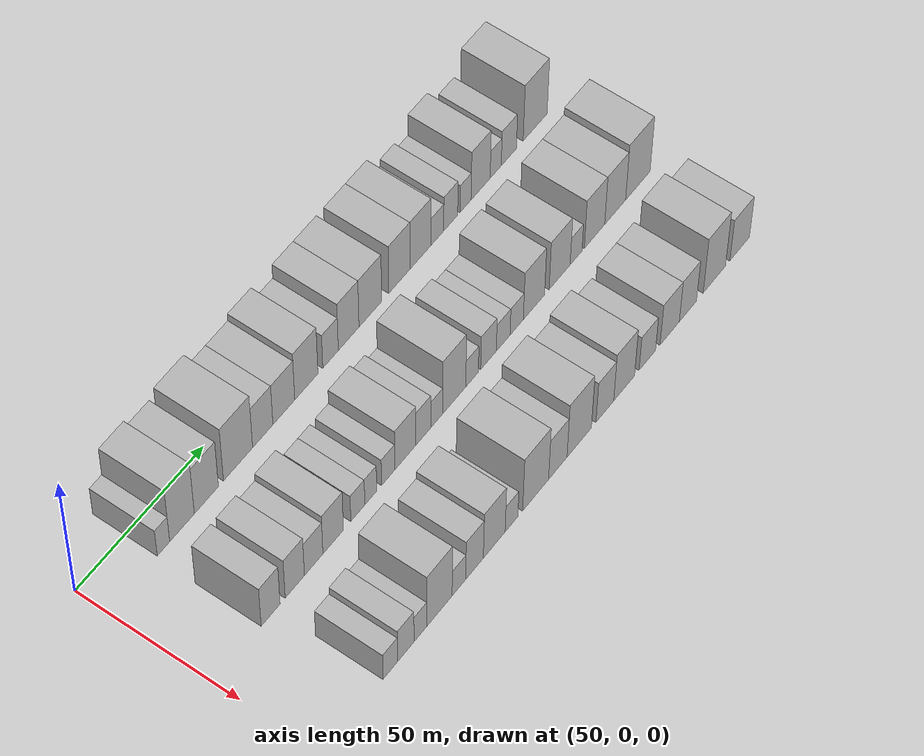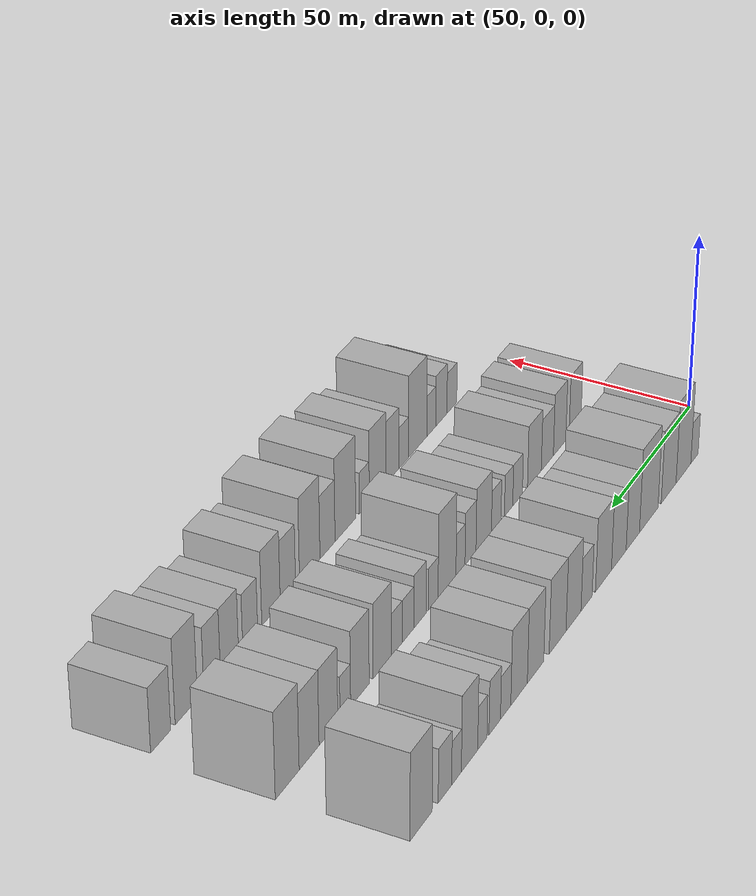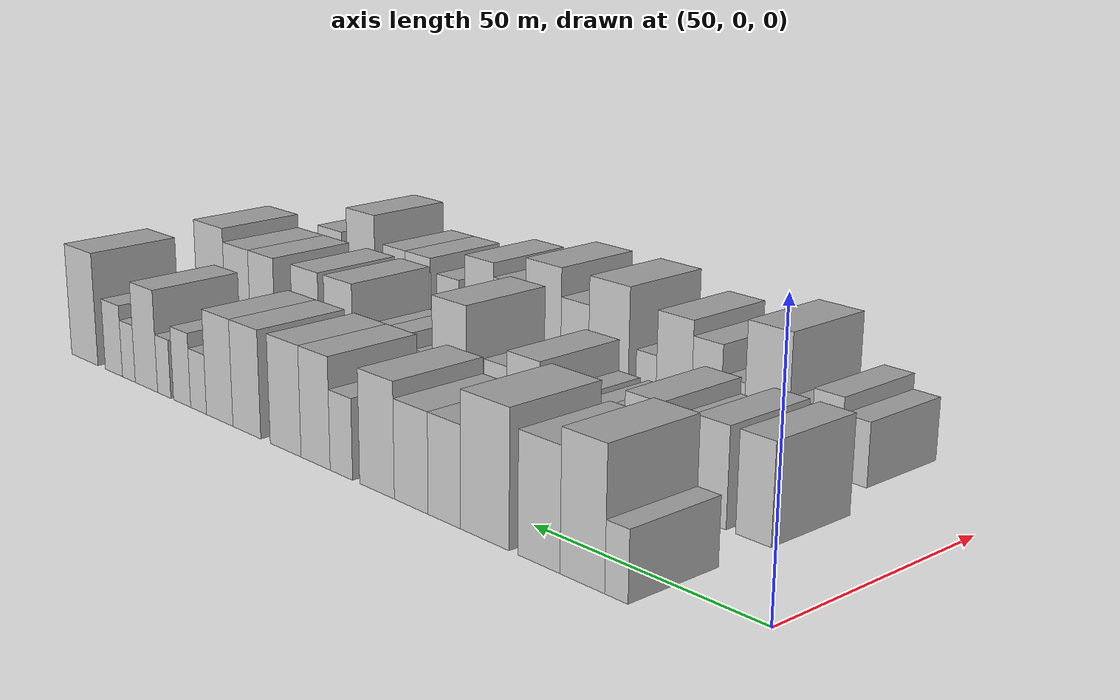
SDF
<sdf version="1.6">
 <world name="default">
  <model name="building_40">
   <static>1</static>
   <pose>50.0000 21.5053 0 0.000000 0.000000 0.000000</pose>
   <link name="link">
    <pose>0 0 6.00 0 0 0</pose>
    <collision name="collision"><geometry><box><size>20.0000 4.8674 12.0000</size></box></geometry></collision>
    <visual name="visual">
     <cast_shadows>0</cast_shadows>
     <geometry><box><size>20.0000 4.8674 12.0000</size></box></geometry>
     <material>
      <script>
       <uri>model://HANNAS_wall/materials/scripts</uri>
       <uri>model://HANNAS_wall/materials/textures</uri>
       <name>vrc/HANNAS_wall</name>
      </script>
     </material>
    </visual>
   </link>
  </model>
  <model name="building_41">
   <static>1</static>
   <pose>50.0000 28.7867 0 0.000000 0.000000 0.000000</pose>
   <link name="link">
    <pose>0 0 12.00 0 0 0</pose>
    <collision name="collision"><geometry><box><size>20.0000 9.6955 24.0000</size></box></geometry></collision>
    <visual name="visual">
     <cast_shadows>0</cast_shadows>
     <geometry><box><size>20.0000 9.6955 24.0000</size></box></geometry>
     <material>
      <script>
       <uri>model://HANNAS_wall/materials/scripts</uri>
       <uri>model://HANNAS_wall/materials/textures</uri>
       <name>vrc/HANNAS_wall</name>
      </script>
     </material>
    </visual>
   </link>
  </model>
  <model name="building_42">
   <static>1</static>
   <pose>50.0000 38.4106 0 0.000000 0.000000 0.000000</pose>
   <link name="link">
    <pose>0 0 10.50 0 0 0</pose>
    <collision name="collision"><geometry><box><size>20.0000 9.5522 21.0000</size></box></geometry></collision>
    <visual name="visual">
     <cast_shadows>0</cast_shadows>
     <geometry><box><size>20.0000 9.5522 21.0000</size></box></geometry>
     <material>
      <script>
       <uri>model://HANNAS_wall/materials/scripts</uri>
       <uri>model://HANNAS_wall/materials/textures</uri>
       <name>vrc/HANNAS_wall</name>
      </script>
     </material>
    </visual>
   </link>
  </model>
  <model name="building_43">
   <static>1</static>
   <pose>50.0000 51.0398 0 0.000000 0.000000 0.000000</pose>
   <link name="link">
    <pose>0 0 12.00 0 0 0</pose>
    <collision name="collision"><geometry><box><size>20.0000 11.7063 24.0000</size></box></geometry></collision>
    <visual name="visual">
     <cast_shadows>0</cast_shadows>
     <geometry><box><size>20.0000 11.7063 24.0000</size></box></geometry>
     <material>
      <script>
       <uri>model://HANNAS_wall/materials/scripts</uri>
       <uri>model://HANNAS_wall/materials/textures</uri>
       <name>vrc/HANNAS_wall</name>
      </script>
     </material>
    </visual>
   </link>
  </model>
  <model name="building_44">
   <static>1</static>
   <pose>50.0000 61.0070 0 0.000000 0.000000 0.000000</pose>
   <link name="link">
    <pose>0 0 9.00 0 0 0</pose>
    <collision name="collision"><geometry><box><size>20.0000 8.2280 18.0000</size></box></geometry></collision>
    <visual name="visual">
     <cast_shadows>0</cast_shadows>
     <geometry><box><size>20.0000 8.2280 18.0000</size></box></geometry>
     <material>
      <script>
       <uri>model://HANNAS_wall/materials/scripts</uri>
       <uri>model://HANNAS_wall/materials/textures</uri>
       <name>vrc/HANNAS_wall</name>
      </script>
     </material>
    </visual>
   </link>
  </model>
  <model name="building_45">
   <static>1</static>
   <pose>50.0000 69.5817 0 0.000000 0.000000 0.000000</pose>
   <link name="link">
    <pose>0 0 9.00 0 0 0</pose>
    <collision name="collision"><geometry><box><size>20.0000 8.9216 18.0000</size></box></geometry></collision>
    <visual name="visual">
     <cast_shadows>0</cast_shadows>
     <geometry><box><size>20.0000 8.9216 18.0000</size></box></geometry>
     <material>
      <script>
       <uri>model://HANNAS_wall/materials/scripts</uri>
       <uri>model://HANNAS_wall/materials/textures</uri>
       <name>vrc/HANNAS_wall</name>
      </script>
     </material>
    </visual>
   </link>
  </model>
  <model name="building_46">
   <static>1</static>
   <pose>50.0000 78.8155 0 0.000000 0.000000 0.000000</pose>
   <link name="link">
    <pose>0 0 10.50 0 0 0</pose>
    <collision name="collision"><geometry><box><size>20.0000 9.5459 21.0000</size></box></geometry></collision>
    <visual name="visual">
     <cast_shadows>0</cast_shadows>
     <geometry><box><size>20.0000 9.5459 21.0000</size></box></geometry>
     <material>
      <script>
       <uri>model://HANNAS_wall/materials/scripts</uri>
       <uri>model://HANNAS_wall/materials/textures</uri>
       <name>vrc/HANNAS_wall</name>
      </script>
     </material>
    </visual>
   </link>
  </model>
  <model name="building_47">
   <static>1</static>
   <pose>50.0000 88.8170 0 0.000000 0.000000 0.000000</pose>
   <link name="link">
    <pose>0 0 7.50 0 0 0</pose>
    <collision name="collision"><geometry><box><size>20.0000 6.4572 15.0000</size></box></geometry></collision>
    <visual name="visual">
     <cast_shadows>0</cast_shadows>
     <geometry><box><size>20.0000 6.4572 15.0000</size></box></geometry>
     <material>
      <script>
       <uri>model://HANNAS_wall/materials/scripts</uri>
       <uri>model://HANNAS_wall/materials/textures</uri>
       <name>vrc/HANNAS_wall</name>
      </script>
     </material>
    </visual>
   </link>
  </model>
  <model name="building_48">
   <static>1</static>
   <pose>50.0000 96.3741 0 0.000000 0.000000 0.000000</pose>
   <link name="link">
    <pose>0 0 10.50 0 0 0</pose>
    <collision name="collision"><geometry><box><size>20.0000 8.6570 21.0000</size></box></geometry></collision>
    <visual name="visual">
     <cast_shadows>0</cast_shadows>
     <geometry><box><size>20.0000 8.6570 21.0000</size></box></geometry>
     <material>
      <script>
       <uri>model://HANNAS_wall/materials/scripts</uri>
       <uri>model://HANNAS_wall/materials/textures</uri>
       <name>vrc/HANNAS_wall</name>
      </script>
     </material>
    </visual>
   </link>
  </model>
  <model name="building_49">
   <static>1</static>
   <pose>50.0000 105.4882 0 0.000000 0.000000 0.000000</pose>
   <link name="link">
    <pose>0 0 10.50 0 0 0</pose>
    <collision name="collision"><geometry><box><size>20.0000 9.5713 21.0000</size></box></geometry></collision>
    <visual name="visual">
     <cast_shadows>0</cast_shadows>
     <geometry><box><size>20.0000 9.5713 21.0000</size></box></geometry>
     <material>
      <script>
       <uri>model://HANNAS_wall/materials/scripts</uri>
       <uri>model://HANNAS_wall/materials/textures</uri>
       <name>vrc/HANNAS_wall</name>
      </script>
     </material>
    </visual>
   </link>
  </model>
  <model name="building_50">
   <static>1</static>
   <pose>50.0000 117.8128 0 0.000000 0.000000 0.000000</pose>
   <link name="link">
    <pose>0 0 10.50 0 0 0</pose>
    <collision name="collision"><geometry><box><size>20.0000 9.0778 21.0000</size></box></geometry></collision>
    <visual name="visual">
     <cast_shadows>0</cast_shadows>
     <geometry><box><size>20.0000 9.0778 21.0000</size></box></geometry>
     <material>
      <script>
       <uri>model://HANNAS_wall/materials/scripts</uri>
       <uri>model://HANNAS_wall/materials/textures</uri>
       <name>vrc/HANNAS_wall</name>
      </script>
     </material>
    </visual>
   </link>
  </model>
  <model name="building_51">
   <static>1</static>
   <pose>50.0000 126.8346 0 0.000000 0.000000 0.000000</pose>
   <link name="link">
    <pose>0 0 10.50 0 0 0</pose>
    <collision name="collision"><geometry><box><size>20.0000 8.9659 21.0000</size></box></geometry></collision>
    <visual name="visual">
     <cast_shadows>0</cast_shadows>
     <geometry><box><size>20.0000 8.9659 21.0000</size></box></geometry>
     <material>
      <script>
       <uri>model://HANNAS_wall/materials/scripts</uri>
       <uri>model://HANNAS_wall/materials/textures</uri>
       <name>vrc/HANNAS_wall</name>
      </script>
     </material>
    </visual>
   </link>
  </model>
  <model name="building_52">
   <static>1</static>
   <pose>50.0000 134.0866 0 0.000000 0.000000 0.000000</pose>
   <link name="link">
    <pose>0 0 6.00 0 0 0</pose>
    <collision name="collision"><geometry><box><size>20.0000 5.5380 12.0000</size></box></geometry></collision>
    <visual name="visual">
     <cast_shadows>0</cast_shadows>
     <geometry><box><size>20.0000 5.5380 12.0000</size></box></geometry>
     <material>
      <script>
       <uri>model://HANNAS_wall/materials/scripts</uri>
       <uri>model://HANNAS_wall/materials/textures</uri>
       <name>vrc/HANNAS_wall</name>
      </script>
     </material>
    </visual>
   </link>
  </model>
  <model name="building_53">
   <static>1</static>
   <pose>50.0000 139.9092 0 0.000000 0.000000 0.000000</pose>
   <link name="link">
    <pose>0 0 7.50 0 0 0</pose>
    <collision name="collision"><geometry><box><size>20.0000 6.1073 15.0000</size></box></geometry></collision>
    <visual name="visual">
     <cast_shadows>0</cast_shadows>
     <geometry><box><size>20.0000 6.1073 15.0000</size></box></geometry>
     <material>
      <script>
       <uri>model://HANNAS_wall/materials/scripts</uri>
       <uri>model://HANNAS_wall/materials/textures</uri>
       <name>vrc/HANNAS_wall</name>
      </script>
     </material>
    </visual>
   </link>
  </model>
  <model name="building_54">
   <static>1</static>
   <pose>50.0000 146.3804 0 0.000000 0.000000 0.000000</pose>
   <link name="link">
    <pose>0 0 6.00 0 0 0</pose>
    <collision name="collision"><geometry><box><size>20.0000 4.8351 12.0000</size></box></geometry></collision>
    <visual name="visual">
     <cast_shadows>0</cast_shadows>
     <geometry><box><size>20.0000 4.8351 12.0000</size></box></geometry>
     <material>
      <script>
       <uri>model://HANNAS_wall/materials/scripts</uri>
       <uri>model://HANNAS_wall/materials/textures</uri>
       <name>vrc/HANNAS_wall</name>
      </script>
     </material>
    </visual>
   </link>
  </model>
  <model name="building_55">
   <static>1</static>
   <pose>50.0000 153.0056 0 0.000000 0.000000 0.000000</pose>
   <link name="link">
    <pose>0 0 10.50 0 0 0</pose>
    <collision name="collision"><geometry><box><size>20.0000 8.4152 21.0000</size></box></geometry></collision>
    <visual name="visual">
     <cast_shadows>0</cast_shadows>
     <geometry><box><size>20.0000 8.4152 21.0000</size></box></geometry>
     <material>
      <script>
       <uri>model://HANNAS_wall/materials/scripts</uri>
       <uri>model://HANNAS_wall/materials/textures</uri>
       <name>vrc/HANNAS_wall</name>
      </script>
     </material>
    </visual>
   </link>
  </model>
  <model name="building_56">
   <static>1</static>
   <pose>50.0000 159.6802 0 0.000000 0.000000 0.000000</pose>
   <link name="link">
    <pose>0 0 6.00 0 0 0</pose>
    <collision name="collision"><geometry><box><size>20.0000 4.9340 12.0000</size></box></geometry></collision>
    <visual name="visual">
     <cast_shadows>0</cast_shadows>
     <geometry><box><size>20.0000 4.9340 12.0000</size></box></geometry>
     <material>
      <script>
       <uri>model://HANNAS_wall/materials/scripts</uri>
       <uri>model://HANNAS_wall/materials/textures</uri>
       <name>vrc/HANNAS_wall</name>
      </script>
     </material>
    </visual>
   </link>
  </model>
  <model name="building_57">
   <static>1</static>
   <pose>50.0000 165.5233 0 0.000000 0.000000 0.000000</pose>
   <link name="link">
    <pose>0 0 7.50 0 0 0</pose>
    <collision name="collision"><geometry><box><size>20.0000 6.7521 15.0000</size></box></geometry></collision>
    <visual name="visual">
     <cast_shadows>0</cast_shadows>
     <geometry><box><size>20.0000 6.7521 15.0000</size></box></geometry>
     <material>
      <script>
       <uri>model://HANNAS_wall/materials/scripts</uri>
       <uri>model://HANNAS_wall/materials/textures</uri>
       <name>vrc/HANNAS_wall</name>
      </script>
     </material>
    </visual>
   </link>
  </model>
  <model name="building_58">
   <static>1</static>
   <pose>50.0000 177.2919 0 0.000000 0.000000 0.000000</pose>
   <link name="link">
    <pose>0 0 12.00 0 0 0</pose>
    <collision name="collision"><geometry><box><size>20.0000 10.7852 24.0000</size></box></geometry></collision>
    <visual name="visual">
     <cast_shadows>0</cast_shadows>
     <geometry><box><size>20.0000 10.7852 24.0000</size></box></geometry>
     <material>
      <script>
       <uri>model://HANNAS_wall/materials/scripts</uri>
       <uri>model://HANNAS_wall/materials/textures</uri>
       <name>vrc/HANNAS_wall</name>
      </script>
     </material>
    </visual>
   </link>
  </model>
  <model name="building_113">
   <static>1</static>
   <pose>82.0000 22.3080 0 0.000000 0.000000 0.000000</pose>
   <link name="link">
    <pose>0 0 9.00 0 0 0</pose>
    <collision name="collision"><geometry><box><size>20.0000 7.4713 18.0000</size></box></geometry></collision>
    <visual name="visual">
     <cast_shadows>0</cast_shadows>
     <geometry><box><size>20.0000 7.4713 18.0000</size></box></geometry>
     <material>
      <script>
       <uri>model://HANNAS_wall/materials/scripts</uri>
       <uri>model://HANNAS_wall/materials/textures</uri>
       <name>vrc/HANNAS_wall</name>
      </script>
     </material>
    </visual>
   </link>
  </model>
  <model name="building_114">
   <static>1</static>
   <pose>82.0000 31.8776 0 0.000000 0.000000 0.000000</pose>
   <link name="link">
    <pose>0 0 9.00 0 0 0</pose>
    <collision name="collision"><geometry><box><size>20.0000 7.6680 18.0000</size></box></geometry></collision>
    <visual name="visual">
     <cast_shadows>0</cast_shadows>
     <geometry><box><size>20.0000 7.6680 18.0000</size></box></geometry>
     <material>
      <script>
       <uri>model://HANNAS_wall/materials/scripts</uri>
       <uri>model://HANNAS_wall/materials/textures</uri>
       <name>vrc/HANNAS_wall</name>
      </script>
     </material>
    </visual>
   </link>
  </model>
  <model name="building_115">
   <static>1</static>
   <pose>82.0000 39.4012 0 0.000000 0.000000 0.000000</pose>
   <link name="link">
    <pose>0 0 7.50 0 0 0</pose>
    <collision name="collision"><geometry><box><size>20.0000 7.3793 15.0000</size></box></geometry></collision>
    <visual name="visual">
     <cast_shadows>0</cast_shadows>
     <geometry><box><size>20.0000 7.3793 15.0000</size></box></geometry>
     <material>
      <script>
       <uri>model://HANNAS_wall/materials/scripts</uri>
       <uri>model://HANNAS_wall/materials/textures</uri>
       <name>vrc/HANNAS_wall</name>
      </script>
     </material>
    </visual>
   </link>
  </model>
  <model name="building_116">
   <static>1</static>
   <pose>82.0000 47.2325 0 0.000000 0.000000 0.000000</pose>
   <link name="link">
    <pose>0 0 9.00 0 0 0</pose>
    <collision name="collision"><geometry><box><size>20.0000 8.2833 18.0000</size></box></geometry></collision>
    <visual name="visual">
     <cast_shadows>0</cast_shadows>
     <geometry><box><size>20.0000 8.2833 18.0000</size></box></geometry>
     <material>
      <script>
       <uri>model://HANNAS_wall/materials/scripts</uri>
       <uri>model://HANNAS_wall/materials/textures</uri>
       <name>vrc/HANNAS_wall</name>
      </script>
     </material>
    </visual>
   </link>
  </model>
  <model name="building_117">
   <static>1</static>
   <pose>82.0000 57.2174 0 0.000000 0.000000 0.000000</pose>
   <link name="link">
    <pose>0 0 6.00 0 0 0</pose>
    <collision name="collision"><geometry><box><size>20.0000 5.6864 12.0000</size></box></geometry></collision>
    <visual name="visual">
     <cast_shadows>0</cast_shadows>
     <geometry><box><size>20.0000 5.6864 12.0000</size></box></geometry>
     <material>
      <script>
       <uri>model://HANNAS_wall/materials/scripts</uri>
       <uri>model://HANNAS_wall/materials/textures</uri>
       <name>vrc/HANNAS_wall</name>
      </script>
     </material>
    </visual>
   </link>
  </model>
  <model name="building_118">
   <static>1</static>
   <pose>82.0000 62.4904 0 0.000000 0.000000 0.000000</pose>
   <link name="link">
    <pose>0 0 6.00 0 0 0</pose>
    <collision name="collision"><geometry><box><size>20.0000 4.8596 12.0000</size></box></geometry></collision>
    <visual name="visual">
     <cast_shadows>0</cast_shadows>
     <geometry><box><size>20.0000 4.8596 12.0000</size></box></geometry>
     <material>
      <script>
       <uri>model://HANNAS_wall/materials/scripts</uri>
       <uri>model://HANNAS_wall/materials/textures</uri>
       <name>vrc/HANNAS_wall</name>
      </script>
     </material>
    </visual>
   </link>
  </model>
  <model name="building_119">
   <static>1</static>
   <pose>82.0000 69.6614 0 0.000000 0.000000 0.000000</pose>
   <link name="link">
    <pose>0 0 6.00 0 0 0</pose>
    <collision name="collision"><geometry><box><size>20.0000 5.4824 12.0000</size></box></geometry></collision>
    <visual name="visual">
     <cast_shadows>0</cast_shadows>
     <geometry><box><size>20.0000 5.4824 12.0000</size></box></geometry>
     <material>
      <script>
       <uri>model://HANNAS_wall/materials/scripts</uri>
       <uri>model://HANNAS_wall/materials/textures</uri>
       <name>vrc/HANNAS_wall</name>
      </script>
     </material>
    </visual>
   </link>
  </model>
  <model name="building_120">
   <static>1</static>
   <pose>82.0000 76.7891 0 0.000000 0.000000 0.000000</pose>
   <link name="link">
    <pose>0 0 9.00 0 0 0</pose>
    <collision name="collision"><geometry><box><size>20.0000 8.7730 18.0000</size></box></geometry></collision>
    <visual name="visual">
     <cast_shadows>0</cast_shadows>
     <geometry><box><size>20.0000 8.7730 18.0000</size></box></geometry>
     <material>
      <script>
       <uri>model://HANNAS_wall/materials/scripts</uri>
       <uri>model://HANNAS_wall/materials/textures</uri>
       <name>vrc/HANNAS_wall</name>
      </script>
     </material>
    </visual>
   </link>
  </model>
  <model name="building_121">
   <static>1</static>
   <pose>82.0000 84.2503 0 0.000000 0.000000 0.000000</pose>
   <link name="link">
    <pose>0 0 7.50 0 0 0</pose>
    <collision name="collision"><geometry><box><size>20.0000 6.1493 15.0000</size></box></geometry></collision>
    <visual name="visual">
     <cast_shadows>0</cast_shadows>
     <geometry><box><size>20.0000 6.1493 15.0000</size></box></geometry>
     <material>
      <script>
       <uri>model://HANNAS_wall/materials/scripts</uri>
       <uri>model://HANNAS_wall/materials/textures</uri>
       <name>vrc/HANNAS_wall</name>
      </script>
     </material>
    </visual>
   </link>
  </model>
  <model name="building_122">
   <static>1</static>
   <pose>82.0000 89.8292 0 0.000000 0.000000 0.000000</pose>
   <link name="link">
    <pose>0 0 6.00 0 0 0</pose>
    <collision name="collision"><geometry><box><size>20.0000 5.0083 12.0000</size></box></geometry></collision>
    <visual name="visual">
     <cast_shadows>0</cast_shadows>
     <geometry><box><size>20.0000 5.0083 12.0000</size></box></geometry>
     <material>
      <script>
       <uri>model://HANNAS_wall/materials/scripts</uri>
       <uri>model://HANNAS_wall/materials/textures</uri>
       <name>vrc/HANNAS_wall</name>
      </script>
     </material>
    </visual>
   </link>
  </model>
  <model name="building_123">
   <static>1</static>
   <pose>82.0000 97.2133 0 0.000000 0.000000 0.000000</pose>
   <link name="link">
    <pose>0 0 12.00 0 0 0</pose>
    <collision name="collision"><geometry><box><size>20.0000 9.7599 24.0000</size></box></geometry></collision>
    <visual name="visual">
     <cast_shadows>0</cast_shadows>
     <geometry><box><size>20.0000 9.7599 24.0000</size></box></geometry>
     <material>
      <script>
       <uri>model://HANNAS_wall/materials/scripts</uri>
       <uri>model://HANNAS_wall/materials/textures</uri>
       <name>vrc/HANNAS_wall</name>
      </script>
     </material>
    </visual>
   </link>
  </model>
  <model name="building_124">
   <static>1</static>
   <pose>82.0000 104.7868 0 0.000000 0.000000 0.000000</pose>
   <link name="link">
    <pose>0 0 6.00 0 0 0</pose>
    <collision name="collision"><geometry><box><size>20.0000 5.3871 12.0000</size></box></geometry></collision>
    <visual name="visual">
     <cast_shadows>0</cast_shadows>
     <geometry><box><size>20.0000 5.3871 12.0000</size></box></geometry>
     <material>
      <script>
       <uri>model://HANNAS_wall/materials/scripts</uri>
       <uri>model://HANNAS_wall/materials/textures</uri>
       <name>vrc/HANNAS_wall</name>
      </script>
     </material>
    </visual>
   </link>
  </model>
  <model name="building_125">
   <static>1</static>
   <pose>82.0000 111.8174 0 0.000000 0.000000 0.000000</pose>
   <link name="link">
    <pose>0 0 7.50 0 0 0</pose>
    <collision name="collision"><geometry><box><size>20.0000 6.6742 15.0000</size></box></geometry></collision>
    <visual name="visual">
     <cast_shadows>0</cast_shadows>
     <geometry><box><size>20.0000 6.6742 15.0000</size></box></geometry>
     <material>
      <script>
       <uri>model://HANNAS_wall/materials/scripts</uri>
       <uri>model://HANNAS_wall/materials/textures</uri>
       <name>vrc/HANNAS_wall</name>
      </script>
     </material>
    </visual>
   </link>
  </model>
  <model name="building_126">
   <static>1</static>
   <pose>82.0000 118.1235 0 0.000000 0.000000 0.000000</pose>
   <link name="link">
    <pose>0 0 6.00 0 0 0</pose>
    <collision name="collision"><geometry><box><size>20.0000 5.9381 12.0000</size></box></geometry></collision>
    <visual name="visual">
     <cast_shadows>0</cast_shadows>
     <geometry><box><size>20.0000 5.9381 12.0000</size></box></geometry>
     <material>
      <script>
       <uri>model://HANNAS_wall/materials/scripts</uri>
       <uri>model://HANNAS_wall/materials/textures</uri>
       <name>vrc/HANNAS_wall</name>
      </script>
     </material>
    </visual>
   </link>
  </model>
  <model name="building_127">
   <static>1</static>
   <pose>82.0000 123.9584 0 0.000000 0.000000 0.000000</pose>
   <link name="link">
    <pose>0 0 6.00 0 0 0</pose>
    <collision name="collision"><geometry><box><size>20.0000 5.7317 12.0000</size></box></geometry></collision>
    <visual name="visual">
     <cast_shadows>0</cast_shadows>
     <geometry><box><size>20.0000 5.7317 12.0000</size></box></geometry>
     <material>
      <script>
       <uri>model://HANNAS_wall/materials/scripts</uri>
       <uri>model://HANNAS_wall/materials/textures</uri>
       <name>vrc/HANNAS_wall</name>
      </script>
     </material>
    </visual>
   </link>
  </model>
  <model name="building_128">
   <static>1</static>
   <pose>82.0000 131.4506 0 0.000000 0.000000 0.000000</pose>
   <link name="link">
    <pose>0 0 10.50 0 0 0</pose>
    <collision name="collision"><geometry><box><size>20.0000 9.2525 21.0000</size></box></geometry></collision>
    <visual name="visual">
     <cast_shadows>0</cast_shadows>
     <geometry><box><size>20.0000 9.2525 21.0000</size></box></geometry>
     <material>
      <script>
       <uri>model://HANNAS_wall/materials/scripts</uri>
       <uri>model://HANNAS_wall/materials/textures</uri>
       <name>vrc/HANNAS_wall</name>
      </script>
     </material>
    </visual>
   </link>
  </model>
  <model name="building_129">
   <static>1</static>
   <pose>82.0000 142.7062 0 0.000000 0.000000 0.000000</pose>
   <link name="link">
    <pose>0 0 10.50 0 0 0</pose>
    <collision name="collision"><geometry><box><size>20.0000 9.2588 21.0000</size></box></geometry></collision>
    <visual name="visual">
     <cast_shadows>0</cast_shadows>
     <geometry><box><size>20.0000 9.2588 21.0000</size></box></geometry>
     <material>
      <script>
       <uri>model://HANNAS_wall/materials/scripts</uri>
       <uri>model://HANNAS_wall/materials/textures</uri>
       <name>vrc/HANNAS_wall</name>
      </script>
     </material>
    </visual>
   </link>
  </model>
  <model name="building_130">
   <static>1</static>
   <pose>82.0000 149.9778 0 0.000000 0.000000 0.000000</pose>
   <link name="link">
    <pose>0 0 6.00 0 0 0</pose>
    <collision name="collision"><geometry><box><size>20.0000 5.2844 12.0000</size></box></geometry></collision>
    <visual name="visual">
     <cast_shadows>0</cast_shadows>
     <geometry><box><size>20.0000 5.2844 12.0000</size></box></geometry>
     <material>
      <script>
       <uri>model://HANNAS_wall/materials/scripts</uri>
       <uri>model://HANNAS_wall/materials/textures</uri>
       <name>vrc/HANNAS_wall</name>
      </script>
     </material>
    </visual>
   </link>
  </model>
  <model name="building_131">
   <static>1</static>
   <pose>82.0000 158.1779 0 0.000000 0.000000 0.000000</pose>
   <link name="link">
    <pose>0 0 10.50 0 0 0</pose>
    <collision name="collision"><geometry><box><size>20.0000 9.1158 21.0000</size></box></geometry></collision>
    <visual name="visual">
     <cast_shadows>0</cast_shadows>
     <geometry><box><size>20.0000 9.1158 21.0000</size></box></geometry>
     <material>
      <script>
       <uri>model://HANNAS_wall/materials/scripts</uri>
       <uri>model://HANNAS_wall/materials/textures</uri>
       <name>vrc/HANNAS_wall</name>
      </script>
     </material>
    </visual>
   </link>
  </model>
  <model name="building_132">
   <static>1</static>
   <pose>82.0000 167.4536 0 0.000000 0.000000 0.000000</pose>
   <link name="link">
    <pose>0 0 10.50 0 0 0</pose>
    <collision name="collision"><geometry><box><size>20.0000 9.4357 21.0000</size></box></geometry></collision>
    <visual name="visual">
     <cast_shadows>0</cast_shadows>
     <geometry><box><size>20.0000 9.4357 21.0000</size></box></geometry>
     <material>
      <script>
       <uri>model://HANNAS_wall/materials/scripts</uri>
       <uri>model://HANNAS_wall/materials/textures</uri>
       <name>vrc/HANNAS_wall</name>
      </script>
     </material>
    </visual>
   </link>
  </model>
  <model name="building_133">
   <static>1</static>
   <pose>82.0000 177.7293 0 0.000000 0.000000 0.000000</pose>
   <link name="link">
    <pose>0 0 12.00 0 0 0</pose>
    <collision name="collision"><geometry><box><size>20.0000 11.1156 24.0000</size></box></geometry></collision>
    <visual name="visual">
     <cast_shadows>0</cast_shadows>
     <geometry><box><size>20.0000 11.1156 24.0000</size></box></geometry>
     <material>
      <script>
       <uri>model://HANNAS_wall/materials/scripts</uri>
       <uri>model://HANNAS_wall/materials/textures</uri>
       <name>vrc/HANNAS_wall</name>
      </script>
     </material>
    </visual>
   </link>
  </model>
  <model name="building_193">
   <static>1</static>
   <pose>114.0000 27.1267 0 0.000000 0.000000 0.000000</pose>
   <link name="link">
    <pose>0 0 6.00 0 0 0</pose>
    <collision name="collision"><geometry><box><size>20.0000 5.7930 12.0000</size></box></geometry></collision>
    <visual name="visual">
     <cast_shadows>0</cast_shadows>
     <geometry><box><size>20.0000 5.7930 12.0000</size></box></geometry>
     <material>
      <script>
       <uri>model://HANNAS_wall/materials/scripts</uri>
       <uri>model://HANNAS_wall/materials/textures</uri>
       <name>vrc/HANNAS_wall</name>
      </script>
     </material>
    </visual>
   </link>
  </model>
  <model name="building_194">
   <static>1</static>
   <pose>114.0000 33.3294 0 0.000000 0.000000 0.000000</pose>
   <link name="link">
    <pose>0 0 7.50 0 0 0</pose>
    <collision name="collision"><geometry><box><size>20.0000 6.6123 15.0000</size></box></geometry></collision>
    <visual name="visual">
     <cast_shadows>0</cast_shadows>
     <geometry><box><size>20.0000 6.6123 15.0000</size></box></geometry>
     <material>
      <script>
       <uri>model://HANNAS_wall/materials/scripts</uri>
       <uri>model://HANNAS_wall/materials/textures</uri>
       <name>vrc/HANNAS_wall</name>
      </script>
     </material>
    </visual>
   </link>
  </model>
  <model name="building_195">
   <static>1</static>
   <pose>114.0000 39.2146 0 0.000000 0.000000 0.000000</pose>
   <link name="link">
    <pose>0 0 6.00 0 0 0</pose>
    <collision name="collision"><geometry><box><size>20.0000 5.1581 12.0000</size></box></geometry></collision>
    <visual name="visual">
     <cast_shadows>0</cast_shadows>
     <geometry><box><size>20.0000 5.1581 12.0000</size></box></geometry>
     <material>
      <script>
       <uri>model://HANNAS_wall/materials/scripts</uri>
       <uri>model://HANNAS_wall/materials/textures</uri>
       <name>vrc/HANNAS_wall</name>
      </script>
     </material>
    </visual>
   </link>
  </model>
  <model name="building_196">
   <static>1</static>
   <pose>114.0000 46.9627 0 0.000000 0.000000 0.000000</pose>
   <link name="link">
    <pose>0 0 12.00 0 0 0</pose>
    <collision name="collision"><geometry><box><size>20.0000 10.3382 24.0000</size></box></geometry></collision>
    <visual name="visual">
     <cast_shadows>0</cast_shadows>
     <geometry><box><size>20.0000 10.3382 24.0000</size></box></geometry>
     <material>
      <script>
       <uri>model://HANNAS_wall/materials/scripts</uri>
       <uri>model://HANNAS_wall/materials/textures</uri>
       <name>vrc/HANNAS_wall</name>
      </script>
     </material>
    </visual>
   </link>
  </model>
  <model name="building_197">
   <static>1</static>
   <pose>114.0000 54.9088 0 0.000000 0.000000 0.000000</pose>
   <link name="link">
    <pose>0 0 6.00 0 0 0</pose>
    <collision name="collision"><geometry><box><size>20.0000 5.5541 12.0000</size></box></geometry></collision>
    <visual name="visual">
     <cast_shadows>0</cast_shadows>
     <geometry><box><size>20.0000 5.5541 12.0000</size></box></geometry>
     <material>
      <script>
       <uri>model://HANNAS_wall/materials/scripts</uri>
       <uri>model://HANNAS_wall/materials/textures</uri>
       <name>vrc/HANNAS_wall</name>
      </script>
     </material>
    </visual>
   </link>
  </model>
  <model name="building_198">
   <static>1</static>
   <pose>114.0000 61.3387 0 0.000000 0.000000 0.000000</pose>
   <link name="link">
    <pose>0 0 9.00 0 0 0</pose>
    <collision name="collision"><geometry><box><size>20.0000 7.3055 18.0000</size></box></geometry></collision>
    <visual name="visual">
     <cast_shadows>0</cast_shadows>
     <geometry><box><size>20.0000 7.3055 18.0000</size></box></geometry>
     <material>
      <script>
       <uri>model://HANNAS_wall/materials/scripts</uri>
       <uri>model://HANNAS_wall/materials/textures</uri>
       <name>vrc/HANNAS_wall</name>
      </script>
     </material>
    </visual>
   </link>
  </model>
  <model name="building_199">
   <static>1</static>
   <pose>114.0000 69.5211 0 0.000000 0.000000 0.000000</pose>
   <link name="link">
    <pose>0 0 10.50 0 0 0</pose>
    <collision name="collision"><geometry><box><size>20.0000 9.0593 21.0000</size></box></geometry></collision>
    <visual name="visual">
     <cast_shadows>0</cast_shadows>
     <geometry><box><size>20.0000 9.0593 21.0000</size></box></geometry>
     <material>
      <script>
       <uri>model://HANNAS_wall/materials/scripts</uri>
       <uri>model://HANNAS_wall/materials/textures</uri>
       <name>vrc/HANNAS_wall</name>
      </script>
     </material>
    </visual>
   </link>
  </model>
  <model name="building_200">
   <static>1</static>
   <pose>114.0000 76.7256 0 0.000000 0.000000 0.000000</pose>
   <link name="link">
    <pose>0 0 6.00 0 0 0</pose>
    <collision name="collision"><geometry><box><size>20.0000 5.3498 12.0000</size></box></geometry></collision>
    <visual name="visual">
     <cast_shadows>0</cast_shadows>
     <geometry><box><size>20.0000 5.3498 12.0000</size></box></geometry>
     <material>
      <script>
       <uri>model://HANNAS_wall/materials/scripts</uri>
       <uri>model://HANNAS_wall/materials/textures</uri>
       <name>vrc/HANNAS_wall</name>
      </script>
     </material>
    </visual>
   </link>
  </model>
  <model name="building_201">
   <static>1</static>
   <pose>114.0000 86.8837 0 0.000000 0.000000 0.000000</pose>
   <link name="link">
    <pose>0 0 12.00 0 0 0</pose>
    <collision name="collision"><geometry><box><size>20.0000 10.9663 24.0000</size></box></geometry></collision>
    <visual name="visual">
     <cast_shadows>0</cast_shadows>
     <geometry><box><size>20.0000 10.9663 24.0000</size></box></geometry>
     <material>
      <script>
       <uri>model://HANNAS_wall/materials/scripts</uri>
       <uri>model://HANNAS_wall/materials/textures</uri>
       <name>vrc/HANNAS_wall</name>
      </script>
     </material>
    </visual>
   </link>
  </model>
  <model name="building_202">
   <static>1</static>
   <pose>114.0000 96.3045 0 0.000000 0.000000 0.000000</pose>
   <link name="link">
    <pose>0 0 9.00 0 0 0</pose>
    <collision name="collision"><geometry><box><size>20.0000 7.8753 18.0000</size></box></geometry></collision>
    <visual name="visual">
     <cast_shadows>0</cast_shadows>
     <geometry><box><size>20.0000 7.8753 18.0000</size></box></geometry>
     <material>
      <script>
       <uri>model://HANNAS_wall/materials/scripts</uri>
       <uri>model://HANNAS_wall/materials/textures</uri>
       <name>vrc/HANNAS_wall</name>
      </script>
     </material>
    </visual>
   </link>
  </model>
  <model name="building_203">
   <static>1</static>
   <pose>114.0000 105.4788 0 0.000000 0.000000 0.000000</pose>
   <link name="link">
    <pose>0 0 12.00 0 0 0</pose>
    <collision name="collision"><geometry><box><size>20.0000 10.4732 24.0000</size></box></geometry></collision>
    <visual name="visual">
     <cast_shadows>0</cast_shadows>
     <geometry><box><size>20.0000 10.4732 24.0000</size></box></geometry>
     <material>
      <script>
       <uri>model://HANNAS_wall/materials/scripts</uri>
       <uri>model://HANNAS_wall/materials/textures</uri>
       <name>vrc/HANNAS_wall</name>
      </script>
     </material>
    </visual>
   </link>
  </model>
  <model name="building_204">
   <static>1</static>
   <pose>114.0000 116.5620 0 0.000000 0.000000 0.000000</pose>
   <link name="link">
    <pose>0 0 9.00 0 0 0</pose>
    <collision name="collision"><geometry><box><size>20.0000 7.6933 18.0000</size></box></geometry></collision>
    <visual name="visual">
     <cast_shadows>0</cast_shadows>
     <geometry><box><size>20.0000 7.6933 18.0000</size></box></geometry>
     <material>
      <script>
       <uri>model://HANNAS_wall/materials/scripts</uri>
       <uri>model://HANNAS_wall/materials/textures</uri>
       <name>vrc/HANNAS_wall</name>
      </script>
     </material>
    </visual>
   </link>
  </model>
  <model name="building_205">
   <static>1</static>
   <pose>114.0000 124.9776 0 0.000000 0.000000 0.000000</pose>
   <link name="link">
    <pose>0 0 10.50 0 0 0</pose>
    <collision name="collision"><geometry><box><size>20.0000 9.1379 21.0000</size></box></geometry></collision>
    <visual name="visual">
     <cast_shadows>0</cast_shadows>
     <geometry><box><size>20.0000 9.1379 21.0000</size></box></geometry>
     <material>
      <script>
       <uri>model://HANNAS_wall/materials/scripts</uri>
       <uri>model://HANNAS_wall/materials/textures</uri>
       <name>vrc/HANNAS_wall</name>
      </script>
     </material>
    </visual>
   </link>
  </model>
  <model name="building_206">
   <static>1</static>
   <pose>114.0000 135.1800 0 0.000000 0.000000 0.000000</pose>
   <link name="link">
    <pose>0 0 7.50 0 0 0</pose>
    <collision name="collision"><geometry><box><size>20.0000 7.2670 15.0000</size></box></geometry></collision>
    <visual name="visual">
     <cast_shadows>0</cast_shadows>
     <geometry><box><size>20.0000 7.2670 15.0000</size></box></geometry>
     <material>
      <script>
       <uri>model://HANNAS_wall/materials/scripts</uri>
       <uri>model://HANNAS_wall/materials/textures</uri>
       <name>vrc/HANNAS_wall</name>
      </script>
     </material>
    </visual>
   </link>
  </model>
  <model name="building_207">
   <static>1</static>
   <pose>114.0000 145.1133 0 0.000000 0.000000 0.000000</pose>
   <link name="link">
    <pose>0 0 9.00 0 0 0</pose>
    <collision name="collision"><geometry><box><size>20.0000 8.5997 18.0000</size></box></geometry></collision>
    <visual name="visual">
     <cast_shadows>0</cast_shadows>
     <geometry><box><size>20.0000 8.5997 18.0000</size></box></geometry>
     <material>
      <script>
       <uri>model://HANNAS_wall/materials/scripts</uri>
       <uri>model://HANNAS_wall/materials/textures</uri>
       <name>vrc/HANNAS_wall</name>
      </script>
     </material>
    </visual>
   </link>
  </model>
  <model name="building_208">
   <static>1</static>
   <pose>114.0000 153.2747 0 0.000000 0.000000 0.000000</pose>
   <link name="link">
    <pose>0 0 9.00 0 0 0</pose>
    <collision name="collision"><geometry><box><size>20.0000 7.7231 18.0000</size></box></geometry></collision>
    <visual name="visual">
     <cast_shadows>0</cast_shadows>
     <geometry><box><size>20.0000 7.7231 18.0000</size></box></geometry>
     <material>
      <script>
       <uri>model://HANNAS_wall/materials/scripts</uri>
       <uri>model://HANNAS_wall/materials/textures</uri>
       <name>vrc/HANNAS_wall</name>
      </script>
     </material>
    </visual>
   </link>
  </model>
  <model name="building_209">
   <static>1</static>
   <pose>114.0000 165.2086 0 0.000000 0.000000 0.000000</pose>
   <link name="link">
    <pose>0 0 12.00 0 0 0</pose>
    <collision name="collision"><geometry><box><size>20.0000 10.1447 24.0000</size></box></geometry></collision>
    <visual name="visual">
     <cast_shadows>0</cast_shadows>
     <geometry><box><size>20.0000 10.1447 24.0000</size></box></geometry>
     <material>
      <script>
       <uri>model://HANNAS_wall/materials/scripts</uri>
       <uri>model://HANNAS_wall/materials/textures</uri>
       <name>vrc/HANNAS_wall</name>
      </script>
     </material>
    </visual>
   </link>
  </model>
  <model name="building_210">
   <static>1</static>
   <pose>114.0000 176.7646 0 0.000000 0.000000 0.000000</pose>
   <link name="link">
    <pose>0 0 9.00 0 0 0</pose>
    <collision name="collision"><geometry><box><size>20.0000 8.9675 18.0000</size></box></geometry></collision>
    <visual name="visual">
     <cast_shadows>0</cast_shadows>
     <geometry><box><size>20.0000 8.9675 18.0000</size></box></geometry>
     <material>
      <script>
       <uri>model://HANNAS_wall/materials/scripts</uri>
       <uri>model://HANNAS_wall/materials/textures</uri>
       <name>vrc/HANNAS_wall</name>
      </script>
     </material>
    </visual>
   </link>
  </model>
 </world>
</sdf>
